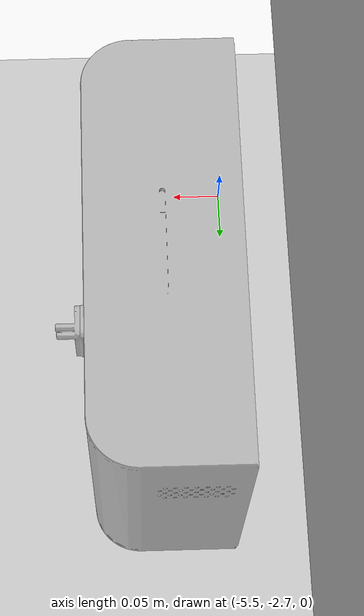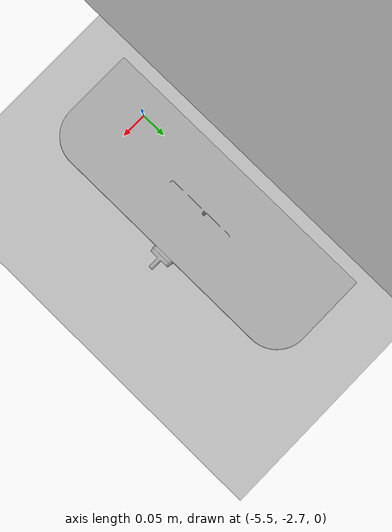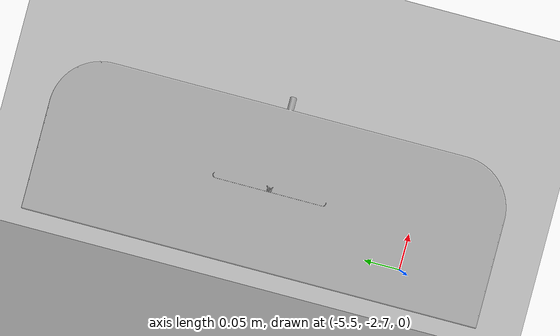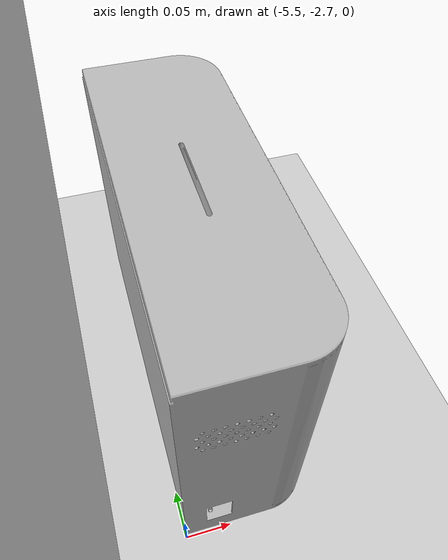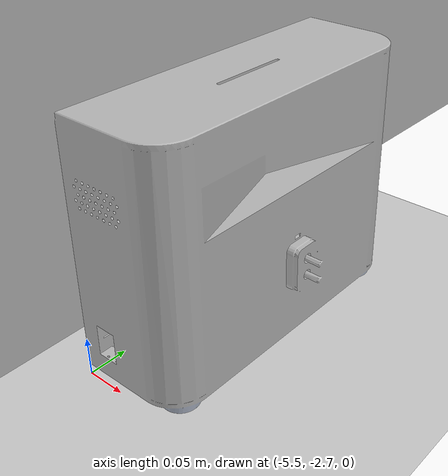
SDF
<?xml version="1.0" ?>

<sdf version="1.6">
  <world name="default">
    <physics name="1ms" type="ignored">
      <max_step_size>0.001</max_step_size>
      <real_time_factor>1.0</real_time_factor>
    </physics>

    <light type="directional" name="sun">
      <cast_shadows>true</cast_shadows>
      <pose>0 0 10 0 0 0</pose>
      <diffuse>0.8 0.8 0.8 1</diffuse>
      <specular>0.2 0.2 0.2 1</specular>
      <attenuation>
        <range>1000</range>
        <constant>0.9</constant>
        <linear>0.01</linear>
        <quadratic>0.001</quadratic>
      </attenuation>
      <direction>-0.5 0.1 -0.9</direction>
    </light>

    <model name="ground_plane">
      <static>true</static>
      <link name="link">
        <collision name="collision">
          <geometry>
            <plane>
              <normal>0 0 1</normal>
              <size>100 100</size>
            </plane>
          </geometry>
        </collision>
        <visual name="visual">
          <geometry>
            <plane>
              <normal>0 0 1</normal>
              <size>100 100</size>
            </plane>
          </geometry>
          <material>
            <ambient>0.8 0.8 0.8 1</ambient>
            <diffuse>0.8 0.8 0.8 1</diffuse>
            <specular>0.8 0.8 0.8 1</specular>
          </material>
        </visual>
      </link>
    </model>

    <include>
      <uri>office_building</uri>
    </include>

    <include>
      <uri>charging_station</uri>
      <pose>-5.5 -2.5 0 0 0 0</pose>
    </include>
  </world>
</sdf>

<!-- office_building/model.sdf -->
<sdf version='1.7'>
  <model name='office_building'>
      <link name='link'>
        <visual name='visual'>
          <geometry>
            <mesh>
              <uri>meshes/office_building.dae</uri>
            </mesh>
          </geometry>
        </visual>
        <collision name='collision'>
          <geometry>
            <mesh>
              <uri>meshes/office_building.dae</uri>
            </mesh>
          </geometry>
        </collision>
        <pose>0 0 0 0 0 0</pose>
        <inertial>
          <pose>0 0 0 0 0 0</pose>
          <mass>1</mass>
          <inertia>
            <ixx>1</ixx>
            <ixy>0</ixy>
            <ixz>0</ixz>
            <iyy>1</iyy>
            <iyz>0</iyz>
            <izz>1</izz>
          </inertia>
        </inertial>
        <enable_wind>false</enable_wind>
      </link>
      <pose>0 0 0 0 0 0</pose>
      <static>true</static>
      <self_collide>false</self_collide>
    </model>
</sdf>

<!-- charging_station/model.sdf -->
<sdf version='1.7'>
  <model name='charging_station'>
      <link name='link'>
        <visual name='visual'>
          <geometry>
            <mesh>
              <uri>meshes/charging_station.dae</uri>
            </mesh>
          </geometry>
        </visual>
        <collision name='collision'>
          <geometry>
            <mesh>
              <uri>meshes/charging_station.stl</uri>
            </mesh>
          </geometry>
        </collision>
        <pose>0 0 0 0 0 0</pose>
        <inertial>
          <pose>0 0 0 0 0 0</pose>
          <mass>1</mass>
          <inertia>
            <ixx>1</ixx>
            <ixy>0</ixy>
            <ixz>0</ixz>
            <iyy>1</iyy>
            <iyz>0</iyz>
            <izz>1</izz>
          </inertia>
        </inertial>
        <enable_wind>false</enable_wind>
      </link>
      <pose>0 0 0 0 0 0</pose>
      <static>true</static>
      <self_collide>false</self_collide>
    </model>
</sdf>
